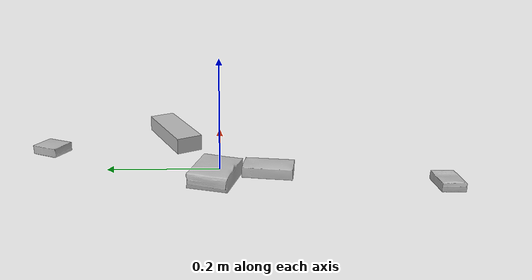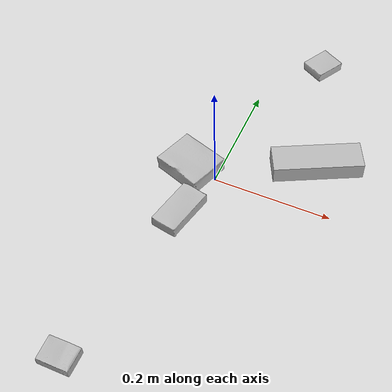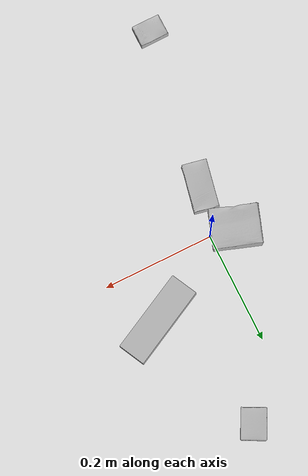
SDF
<sdf version="1.4">
  <world name="default">
    <light name="light1" type="point">
      <pose>0 0 1 0 0 0</pose>
      <diffuse>3 3 3 1</diffuse>
      <specular>3 3 3 1</specular>
    </light>
    <light name="light2" type="point">
      <pose>0 0.5 2 0 0 0</pose>
      <diffuse>1 1 1 1</diffuse>
      <specular>1 1 1 1</specular>
    </light>
    <light name="light3" type="point">
      <pose>0 0.5 2 0 0 0</pose>
      <diffuse>3 3 3 1</diffuse>
      <specular>3 3 3 1</specular>
    </light>
    <scene>
      <ambient>0.7 0.7 0.7</ambient>
    </scene>
    <model name="box1">
      <link name="link_box1">
        <collision name="default">
          <geometry>
            <mesh>
              <uri>model://sugar_box/collision_meshes/collision.obj</uri>
              <scale>0.5 0.5 0.5</scale>
            </mesh>
          </geometry>
          <surface>
            <friction>
              <ode>
                <mu>0.5</mu>
                <mu2>0.5</mu2>
              </ode>
            </friction>
          <contact>
        <ode>
            <max_vel>0</max_vel>
            <min_depth>0.0001</min_depth>
            <kp>1e8</kp>
        </ode>
    </contact></surface>
        </collision>
        <visual name="default">
          <geometry>
            <mesh>
              <uri>model://sugar_box/visual_meshes/visual.dae</uri>
              <scale>0.5 0.5 0.5</scale>
            </mesh>
          </geometry>
        </visual>
        <inertial>
          <mass>0.050072960555553436</mass>
          <pose>0.0005171863595023751 1.924554817378521e-05 -0.00018182402709499002 -0.0004046260967901466 0.0010506635218491861 0.0026153785561980193</pose>
          <inertia>
            <ixx>1.0430162e-05</ixx>
            <iyy>3.371243e-05</iyy>
            <izz>4.0357794e-05</izz>
            <ixy>0</ixy>
            <ixz>0</ixz>
            <iyz>0</iyz>
          </inertia>
        </inertial>
      </link>
      <pose>-0.024434862658381462 -0.08472966402769089 0.011399306356906891 0.0007749523211808249 -0.02343314428875204 -1.7782874402167164</pose>
    </model>
    <model name="box2">
      <link name="link_box2">
        <collision name="default">
          <geometry>
            <mesh>
              <uri>model://pudding_box/collision_meshes/collision.obj</uri>
              <scale>0.5 0.5 0.5</scale>
            </mesh>
          </geometry>
          <surface>
            <friction>
              <ode>
                <mu>0.5</mu>
                <mu2>0.5</mu2>
              </ode>
            </friction>
          <contact>
        <ode>
            <max_vel>0</max_vel>
            <min_depth>0.0001</min_depth>
            <kp>1e8</kp>
        </ode>
    </contact></surface>
        </collision>
        <visual name="default">
          <geometry>
            <mesh>
              <uri>model://pudding_box/visual_meshes/visual.dae</uri>
              <scale>0.5 0.5 0.5</scale>
            </mesh>
          </geometry>
        </visual>
        <inertial>
          <mass>0.026034390553832054</mass>
          <pose>0.00024474109522998333 0.00040339428232982755 -0.0002594413817860186 0.005213101355963405 -0.006603798228586091 0.020079817710543634</pose>
          <inertia>
            <ixx>7.3576343e-06</ixx>
            <iyy>4.9502682e-06</iyy>
            <izz>1.086547e-05</izz>
            <ixy>0</ixy>
            <ixz>0</ixz>
            <iyz>0</iyz>
          </inertia>
        </inertial>
      </link>
      <pose>0.08008413016796112 0.31965863704681396 0.009862903505563736 0.02234836013370942 -0.011391855331341967 2.6569947600191615</pose>
    </model>
    <model name="box3">
      <link name="link_box3">
        <collision name="default">
          <geometry>
            <mesh>
              <uri>model://jenga/collision_meshes/collision.obj</uri>
              <scale>1.0 1.0 1.0</scale>
            </mesh>
          </geometry>
          <surface>
            <friction>
              <ode>
                <mu>0.5</mu>
                <mu2>0.5</mu2>
              </ode>
            </friction>
          <contact>
        <ode>
            <max_vel>0</max_vel>
            <min_depth>0.0001</min_depth>
            <kp>1e8</kp>
        </ode>
    </contact></surface>
        </collision>
        <visual name="default">
          <geometry>
            <mesh>
              <uri>model://jenga/visual_meshes/visual.dae</uri>
              <scale>1.0 1.0 1.0</scale>
            </mesh>
          </geometry>
        </visual>
        <inertial>
          <mass>0.2076648771762848</mass>
          <pose>-2.502856091268768e-07 -0.00010250010382151231 -4.0923405322246253e-05 0.0 -7.34215461761844e-07 0.0</pose>
          <inertia>
            <ixx>5.746591e-05</ixx>
            <iyy>0.00038938745</iyy>
            <izz>0.0004157042</izz>
            <ixy>0</ixy>
            <ixz>0</ixz>
            <iyz>0</iyz>
          </inertia>
        </inertial>
      </link>
      <pose>0.14548760652542114 0.09123077243566513 0.01499999687075615 1.2829057369717133e-08 6.432656036919819e-10 -2.6760090986249945</pose>
    </model>
    <model name="box4">
      <link name="link_box4">
        <collision name="default">
          <geometry>
            <mesh>
              <uri>model://gelatin_box/collision_meshes/collision.obj</uri>
              <scale>1.0 1.0 1.0</scale>
            </mesh>
          </geometry>
          <surface>
            <friction>
              <ode>
                <mu>0.5</mu>
                <mu2>0.5</mu2>
              </ode>
            </friction>
          <contact>
        <ode>
            <max_vel>0</max_vel>
            <min_depth>0.0001</min_depth>
            <kp>1e8</kp>
        </ode>
    </contact></surface>
        </collision>
        <visual name="default">
          <geometry>
            <mesh>
              <uri>model://gelatin_box/visual_meshes/visual.dae</uri>
              <scale>1.0 1.0 1.0</scale>
            </mesh>
          </geometry>
        </visual>
        <inertial>
          <mass>0.09577830880880356</mass>
          <pose>0.000431961816502735 0.00011156871187267825 -0.0003640321083366871 -0.0010503719862657887 -0.004755821487046037 0.01644055388468454</pose>
          <inertia>
            <ixx>6.761167e-05</ixx>
            <iyy>4.8294667e-05</iyy>
            <izz>0.00010292002</izz>
            <ixy>0</ixy>
            <ixz>0</ixz>
            <iyz>0</iyz>
          </inertia>
        </inertial>
      </link>
      <pose>-0.04638916999101639 0.007218249142169952 0.015168308280408382 0.005597489543383575 -0.007304550506881289 -1.915230029672737</pose>
    </model>
    <model name="box5">
      <link name="link_box5">
        <collision name="default">
          <geometry>
            <mesh>
              <uri>model://cracker_box/collision_meshes/collision.obj</uri>
              <scale>0.25 0.25 0.25</scale>
            </mesh>
          </geometry>
          <surface>
            <friction>
              <ode>
                <mu>0.5</mu>
                <mu2>0.5</mu2>
              </ode>
            </friction>
          <contact>
        <ode>
            <max_vel>0</max_vel>
            <min_depth>0.0001</min_depth>
            <kp>1e8</kp>
        </ode>
    </contact></surface>
        </collision>
        <visual name="default">
          <geometry>
            <mesh>
              <uri>model://cracker_box/visual_meshes/visual.dae</uri>
              <scale>0.25 0.25 0.25</scale>
            </mesh>
          </geometry>
        </visual>
        <inertial>
          <mass>0.019404999911785126</mass>
          <pose>0.00023660343140363693 6.358561950037256e-05 -0.00042573839891701937 -0.00031620745436260704 -0.011106489600575076 0.0025467952338677235</pose>
          <inertia>
            <ixx>3.084854e-06</ixx>
            <iyy>5.093699e-06</iyy>
            <izz>7.269177e-06</izz>
            <ixy>0</ixy>
            <ixz>0</ixz>
            <iyz>0</iyz>
          </inertia>
        </inertial>
      </link>
      <pose>-0.07302803546190262 -0.3788926899433136 0.009120453149080276 -0.011787862832934681 -0.007367161736327074 3.1415400017787647</pose>
    </model>
  <physics type="ode">
      <max_contacts>50</max_contacts>
      <ode>
        <solver>
          <type>quick</type>
          <iters>75</iters>
        </solver>
        <constraints>
          <contact_max_correcting_vel>0</contact_max_correcting_vel>
          <contact_surface_layer>0</contact_surface_layer>
        </constraints>
      </ode>
    </physics></world>
</sdf>
